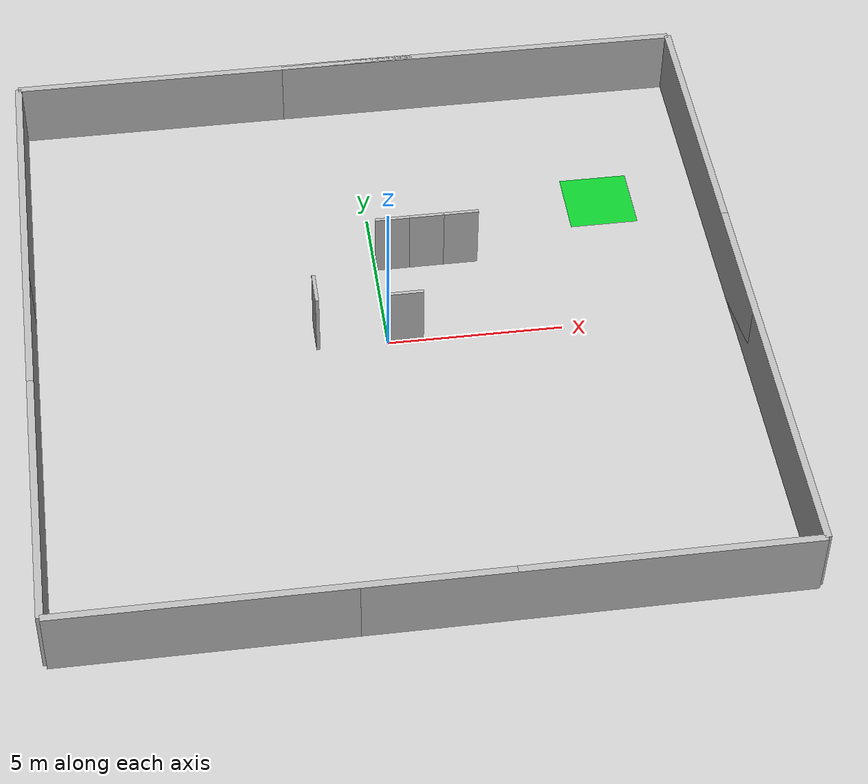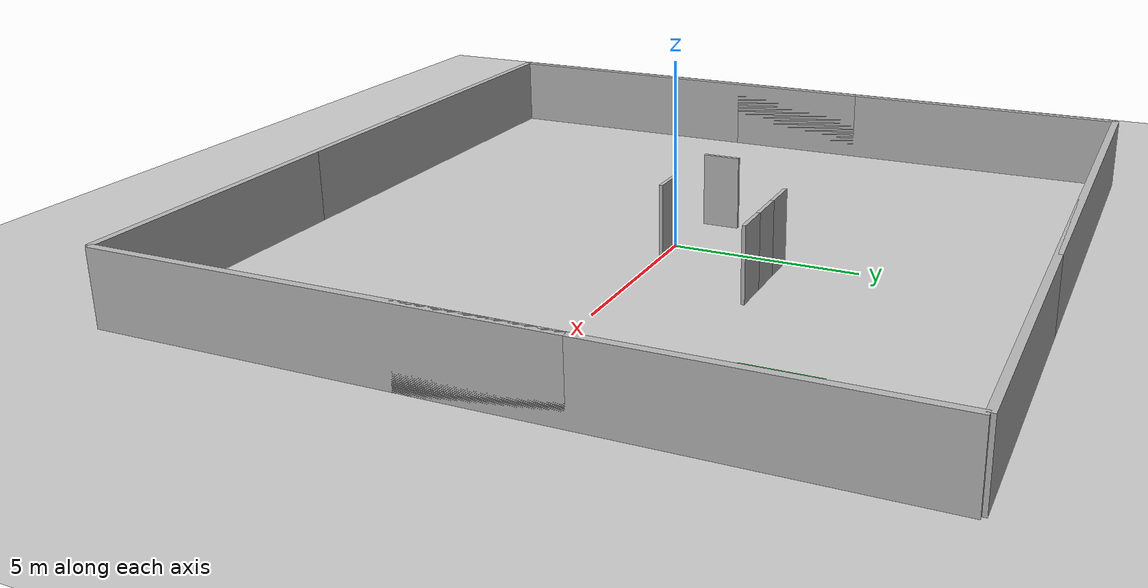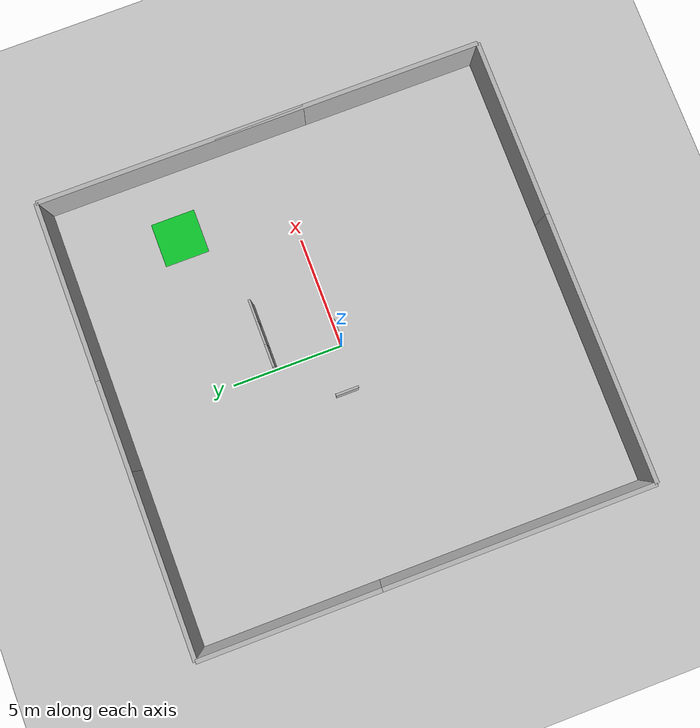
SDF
<?xml version="1.0"?>
<sdf version="1.8">
  <world name="new_world">
    <physics name="1ms" type="ignored">
      <max_step_size>0.001</max_step_size>
      <real_time_factor>1.0</real_time_factor>
    </physics>
    <plugin name='ignition::gazebo::systems::Physics'
      filename='libignition-gazebo-physics-system.so' />
    <plugin name='ignition::gazebo::systems::UserCommands'
      filename='libignition-gazebo-user-commands-system.so' />
    <plugin name='ignition::gazebo::systems::SceneBroadcaster'
      filename='libignition-gazebo-scene-broadcaster-system.so' />
    <plugin name='ignition::gazebo::systems::Imu' filename='ignition-gazebo-imu-system' />
    <plugin name='ignition::gazebo::systems::Sensors' filename='ignition-gazebo-sensors-system'>
      <render_engine>ogre2</render_engine>
    </plugin>

    <include>
      <uri>
        https://fuel.gazebosim.org/1.0/OpenRobotics/models/Sun
      </uri>
    </include>

    <include>
      <name>ground</name>
      <uri>model://ground</uri>
    </include>

    <include>
      <name>marker</name>
      <uri>model://marker</uri>
      <pose>7 5 0.01 0 0 0</pose>
    </include>

    <include>
      <name>maze_wall</name>
      <uri>model://wall_1m</uri>
      <pose>-2 0 0 0 0 1.5708</pose>
    </include>

    <include>
      <name>maze_wall2</name>
      <uri>model://wall_1m</uri>
      <pose>0 0 0 0 0 0</pose>
    </include>

    <include>
      <name>maze_wall3</name>
      <uri>model://wall_1m</uri>
      <pose>0 3 0 0 0 0</pose>
    </include>

    <include>
      <name>maze_wall4</name>
      <uri>model://wall_1m</uri>
      <pose>1 3 0 0 0 0</pose>
    </include>

    <include>
      <name>maze_wall5</name>
      <uri>model://wall_1m</uri>
      <pose>2 3 0 0 0 0</pose>
    </include>

    <include>
      <name>wall1</name>
      <uri>model://wall</uri>
      <pose>10 4 0 0 0 0</pose>
    </include>

    <include>
      <name>wall2</name>
      <uri>model://wall</uri>
      <pose>10 -4 0 0 0 0</pose>
    </include>

    <include>
      <name>wall3</name>
      <uri>model://wall</uri>
      <pose>-10 4 0 0 0 0</pose>
    </include>

    <include>
      <name>wall4</name>
      <uri>model://wall</uri>
      <pose>-10 -4 0 0 0 0</pose>
    </include>

    <include>
      <name>wall5</name>
      <uri>model://wall</uri>
      <pose>4 10 0 0 0 1.5708</pose>
    </include>

    <include>
      <name>wall6</name>
      <uri>model://wall</uri>
      <pose>-4 10 0 0 0 1.5708</pose>
    </include>

    <include>
      <name>wall7</name>
      <uri>model://wall</uri>
      <pose>4 -10 0 0 0 1.5708</pose>
    </include>

    <include>
      <name>wall8</name>
      <uri>model://wall</uri>
      <pose>-4 -10 0 0 0 1.5708</pose>
    </include>

  </world>
</sdf>

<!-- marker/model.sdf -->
<sdf version="1.8">
  <model name="marker">
    <static>true</static>
    <link name="link">
      <visual name="visual">
        <geometry>
          <mesh>
            <uri>model://marker/meshes/marker.dae</uri>
          </mesh>
        </geometry>
      </visual>
    </link>
  </model>
</sdf>

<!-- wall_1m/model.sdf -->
<sdf version="1.10">
  <model name="wall_1m">
    <static>true</static>
    <link name="wall_link">
      <visual name="wall_visual">
        <geometry>
          <mesh>
            <uri>model://wall_1m/meshes/wall.dae</uri>
          </mesh>
        </geometry>
      </visual>

      <collision name="wall_collision">
        <geometry>
          <mesh>
            <uri>model://wall_1m/meshes/wall.dae</uri>
          </mesh>
        </geometry>
      </collision>
    </link>
  </model>
</sdf>

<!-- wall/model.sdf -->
<sdf version="1.6">
  <model name="floor">
    <pose>0 0 0 0 0 0</pose>
    <static>1</static>
    <link name="link">
      <inertial>
        <mass>12</mass>
      </inertial>
      <collision name="collision">
        <geometry>
          <box>
            <size>0.2 12 4</size>
          </box>
        </geometry>
      </collision>
      <visual name="visual">
        <pose>0 0 0 0 0 0</pose>
        <geometry>
          <mesh>
            <uri>model://wall/meshes/wall.dae</uri>
            <scale>1 1 1</scale>
          </mesh>
        </geometry>
      </visual>
    </link>
  </model>
</sdf>
